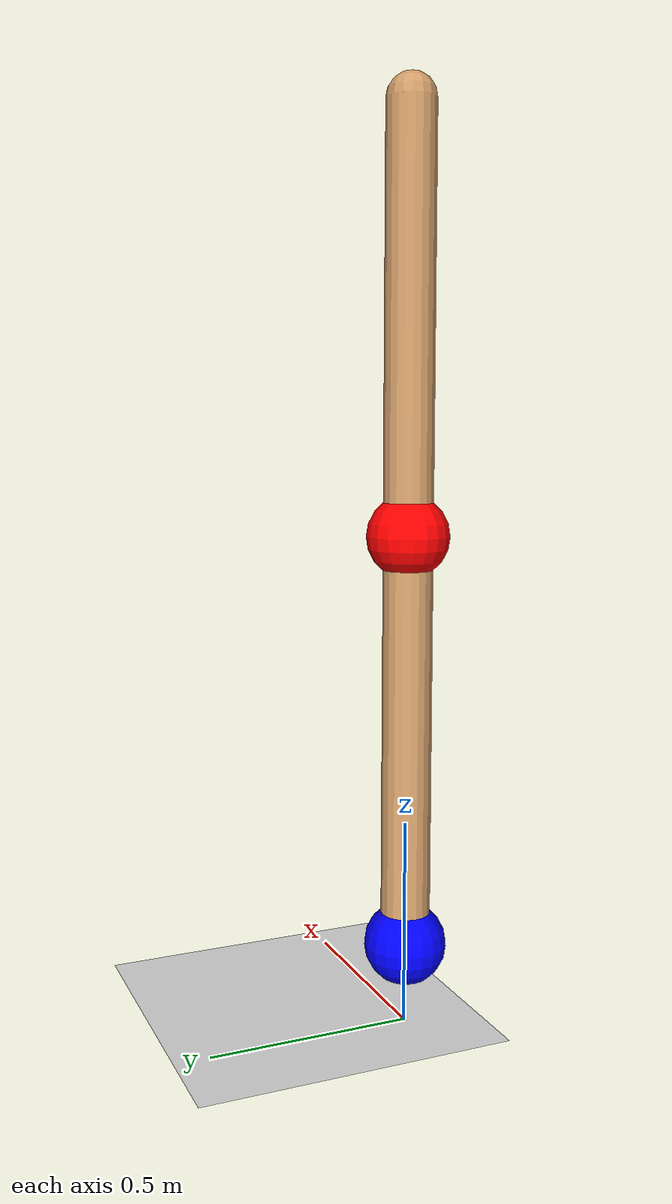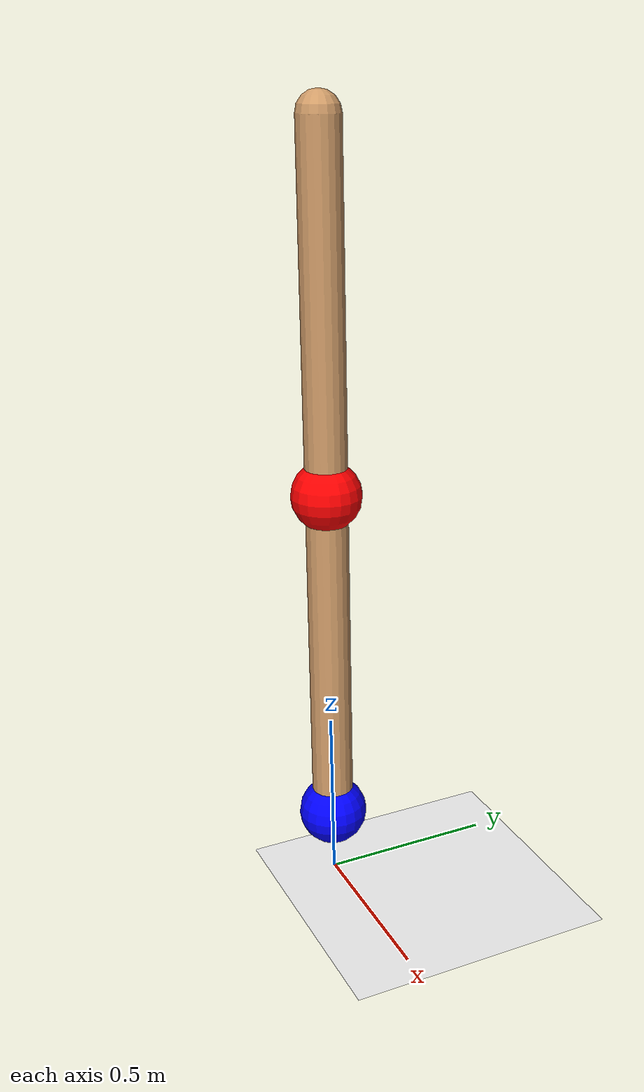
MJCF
<mujoco model="double_pendulum">

    <!-- experimental -->
    <option timestep="0.005" gravity="0 0 -9.81"/>

    <asset>
        <texture type="skybox" builtin="gradient" rgb1="1 1 1" rgb2="1 1 1" width="512" height="3072"/>
        <texture type="2d" name="groundplane" builtin="checker" mark="edge" rgb1="1 1 1" rgb2="1 1 1" markrgb="1 1 1" width="300" height="300"/>
        <material name="groundplane" texture="groundplane" texuniform="true" texrepeat="5 5" reflectance="0"/>
    </asset>

    <worldbody>
        <light name="global_light" directional="true" diffuse="1 1 1" specular="0.3 0.3 0.3" castshadow="false"/>
        <light name="fill_light_0" pos="-5 0 10" dir="0 0 -1" directional="false" diffuse="1 1 1" specular="0.2 0.2 0.2"/>
        <light name="fill_light_1" pos="0 0 10" dir="0 0 -1" directional="false" diffuse="1 1 1" specular="0.2 0.2 0.2"/>
        <light name="fill_light_2" pos="5 0 10" dir="0 0 -1" directional="false" diffuse="1 1 1" specular="0.2 0.2 0.2"/>

        <geom name="floor" pos="0 0 0" size="0 0 0.05" type="plane" material="groundplane"/>

        <!-- First link -->
        <body name="first_link" pos="0 0 2.2">
            <joint name="hinge1" type="hinge" axis="0 1 0" pos="0 0 0" damping="0.5"/>
            <geom name="rod1" type="capsule" fromto="0 0 0 0 0 -1" size="0.06" mass="1" rgba="0.8 0.6 0.4 1"/>
            <geom name="bob1" type="sphere" pos="0 0 -1" size="0.10" rgba="1 0 0 1" mass="0"/>

            <!-- Second link attached to the first -->
            <body name="second_link" pos="0 0 -1">
                <joint name="hinge2" type="hinge" axis="0 1 0" pos="0 0 0" damping="0.5"/>
                <geom name="rod2" type="capsule" fromto="0 0 0 0 0 -1" size="0.06" mass="1" rgba="0.8 0.6 0.4 1"/>
                <geom name="bob2" type="sphere" pos="0 0 -1" size="0.10" rgba="0 0 1 1" mass="0"/>
            </body>
        </body>
    </worldbody>

    <actuator>
        <!-- Optional: torque actuator to drive the pendulum -->
        <motor joint="hinge1" ctrlrange="-1 1" gear="6"/>
    </actuator>
</mujoco>
